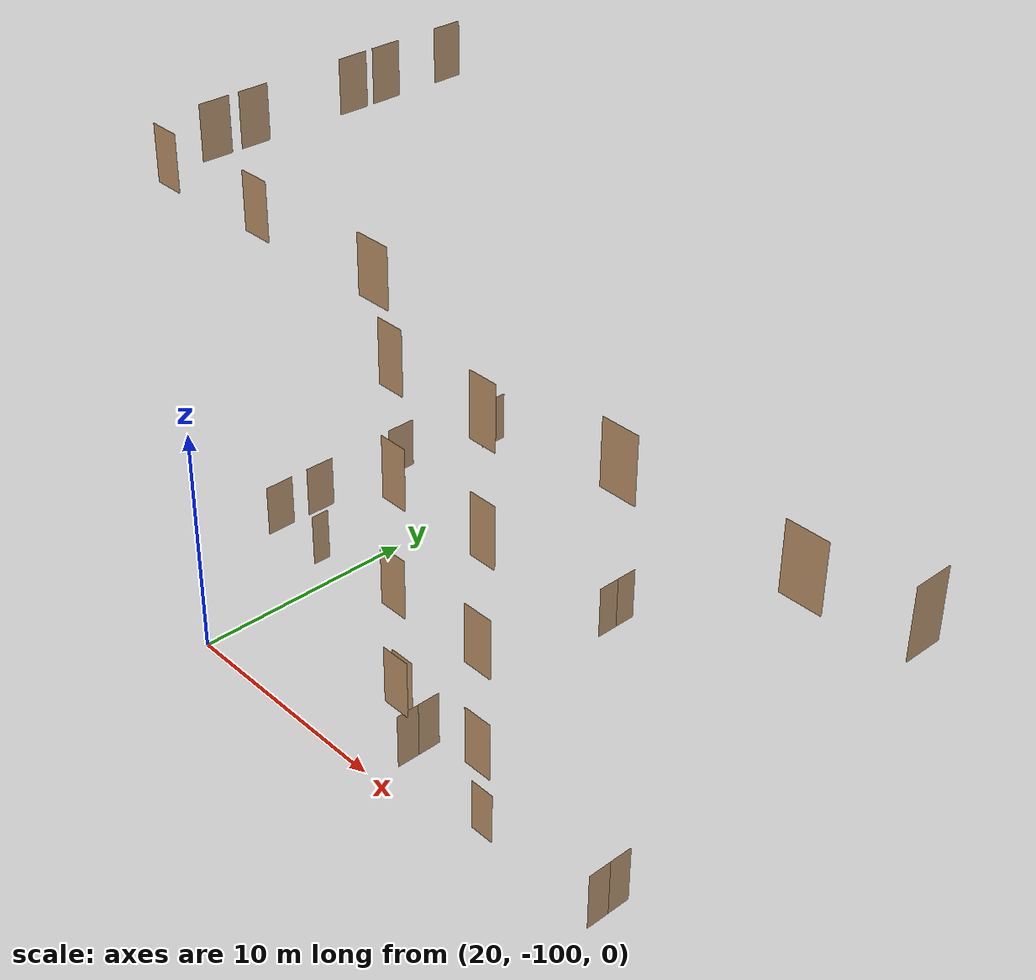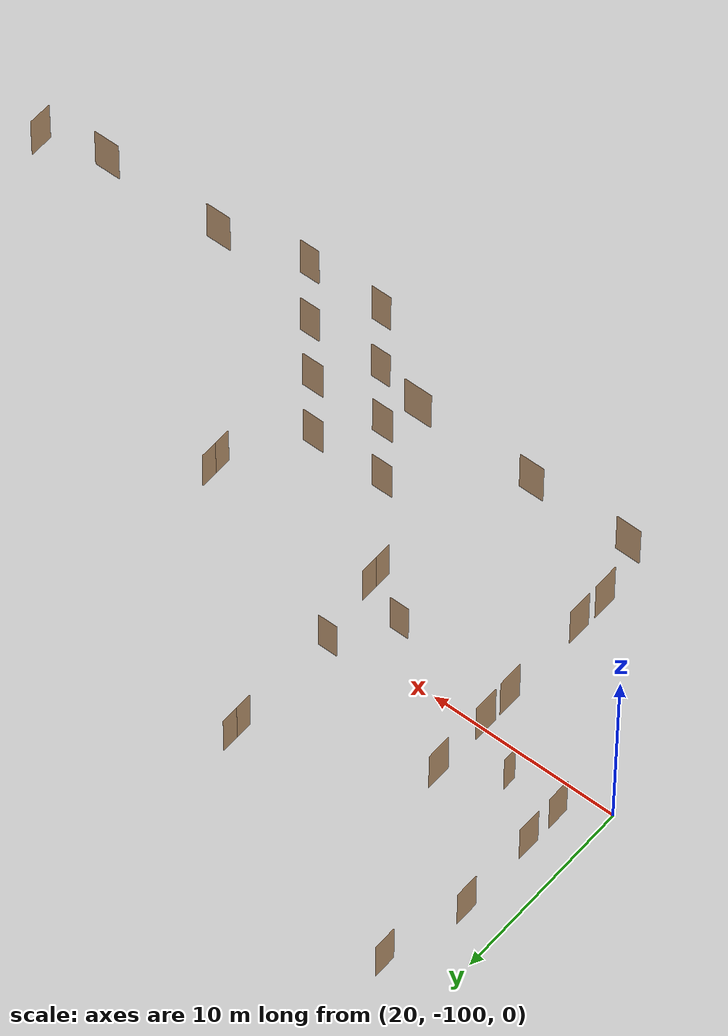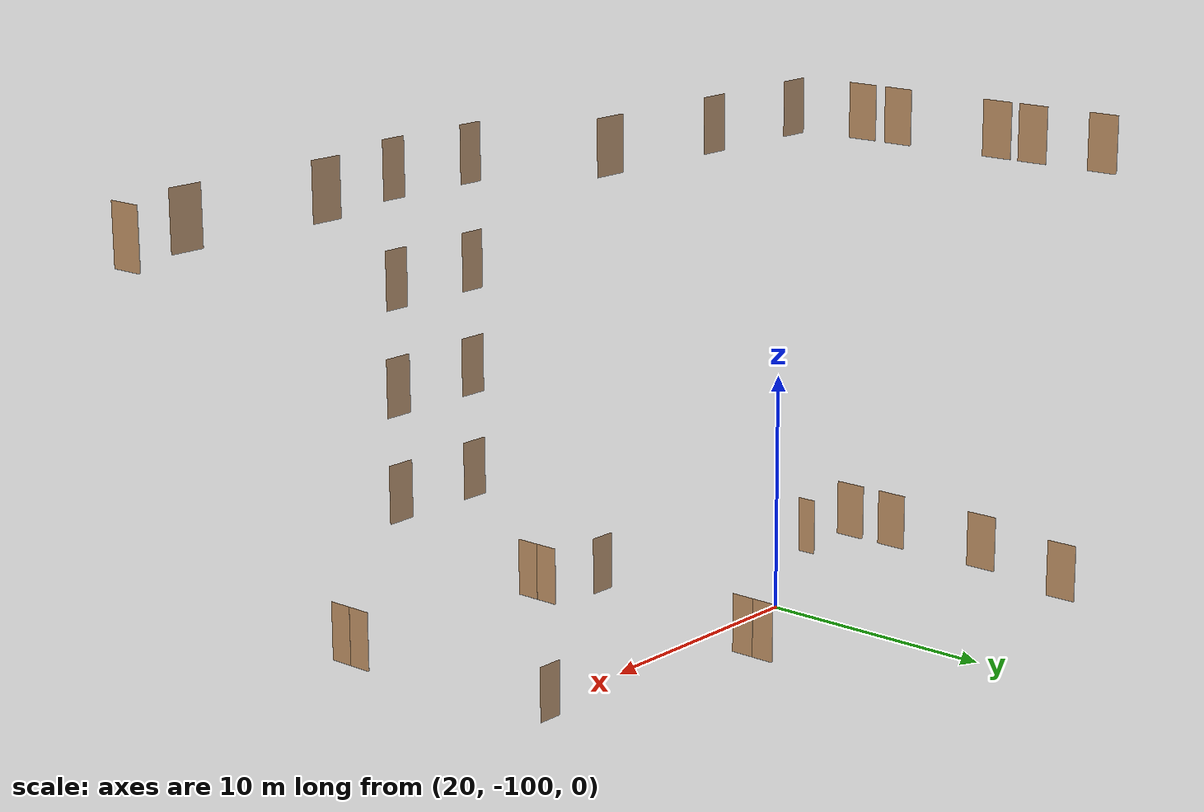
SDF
<sdf version="1.7">
 <world name="sim_world">
  <model name="Snull16">
   <pose>35.237146697532 -98.97069036329009 0.0 0 0 3.141592653589793</pose>
   <link name="right">
    <pose>0 0 1.11 0 0 0</pose>
    <visual name="right_visual">
     <geometry><box><size>1.0574308329910787 0.03 2.2</size></box></geometry>
     <material>
      <ambient>0.5 0.25 0 0.6</ambient>
      <diffuse>0.5 0.25 0 0.6</diffuse>
      <pbr><metal><metalness>0.0</metalness></metal></pbr>
     </material>
    </visual>
    <collision name="right_collision">
     <geometry><box><size>1.0574308329910787 0.03 2.2</size></box></geometry>
     <surface><contact><collide_bitmask>0x02</collide_bitmask></contact></surface>
    </collision>
    <inertial>
     <mass>50.0</mass>
     <inertia><ixx>20.17041666666667</ixx><iyy>24.8256665273342</iyy><izz>4.662749860667526</izz></inertia>
    </inertial>
   </link>
   <joint name="right_joint" type="revolute">
    <parent>world</parent>
    <child>right</child>
    <axis><xyz>0 0 -1</xyz><limit><lower>0</lower><upper>1.57</upper></limit></axis>
    <pose>0.5337154164955393 0 0 0 0 0</pose>
   </joint>
   <plugin name="register_component" filename="libregister_component.so">
    <component name="Door">
     <v_max_door>0.5</v_max_door>
     <a_max_door>0.3</a_max_door>
     <a_nom_door>0.15</a_nom_door>
     <dx_min_door>0.01</dx_min_door>
     <f_max_door>500.0</f_max_door>
     <ros_interface>true</ros_interface>
     <door name="Snull16" type="SwingDoor" left_joint_name="empty_joint" right_joint_name="right_joint"/>
    </component>
   </plugin>
  </model>
  <model name="0null48">
   <pose>43.39054624201916 -101.08589403726236 4.0 0 0 -1.5707963267948966</pose>
   <link name="right">
    <pose>0.450500317365492 0 1.11 0 0 0</pose>
    <visual name="right_visual">
     <geometry><box><size>0.891000634730984 0.03 2.2</size></box></geometry>
     <material>
      <ambient>0.5 0.25 0 0.6</ambient>
      <diffuse>0.5 0.25 0 0.6</diffuse>
      <pbr><metal><metalness>0.0</metalness></metal></pbr>
     </material>
    </visual>
    <collision name="right_collision">
     <geometry><box><size>0.891000634730984 0.03 2.2</size></box></geometry>
     <surface><contact><collide_bitmask>0x02</collide_bitmask></contact></surface>
    </collision>
    <inertial>
     <mass>50.0</mass>
     <inertia><ixx>20.17041666666667</ixx><iyy>23.474508879545905</iyy><izz>3.311592212879235</izz></inertia>
    </inertial>
   </link>
   <joint name="right_joint" type="revolute">
    <parent>world</parent>
    <child>right</child>
    <axis><xyz>0 0 1</xyz><limit><lower>0</lower><upper>1.57</upper></limit></axis>
    <pose>0.450500317365492 0 0 0 0 0</pose>
   </joint>
   <link name="left">
    <pose>-0.450500317365492 0 1.11 0 0 0</pose>
    <visual name="left_visual">
     <geometry><box><size>0.891000634730984 0.03 2.2</size></box></geometry>
     <material>
      <ambient>0.5 0.25 0 0.6</ambient>
      <diffuse>0.5 0.25 0 0.6</diffuse>
      <pbr><metal><metalness>0.0</metalness></metal></pbr>
     </material>
    </visual>
    <collision name="left_collision">
     <geometry><box><size>0.891000634730984 0.03 2.2</size></box></geometry>
     <surface><contact><collide_bitmask>0x02</collide_bitmask></contact></surface>
    </collision>
    <inertial>
     <mass>50.0</mass>
     <inertia><ixx>20.17041666666667</ixx><iyy>23.474508879545905</iyy><izz>3.311592212879235</izz></inertia>
    </inertial>
   </link>
   <joint name="left_joint" type="revolute">
    <parent>world</parent>
    <child>left</child>
    <axis><xyz>0 0 1</xyz><limit><lower>-1.57</lower><upper>0</upper></limit></axis>
    <pose>-0.450500317365492 0 0 0 0 0</pose>
   </joint>
   <plugin name="register_component" filename="libregister_component.so">
    <component name="Door">
     <v_max_door>0.5</v_max_door>
     <a_max_door>0.3</a_max_door>
     <a_nom_door>0.15</a_nom_door>
     <dx_min_door>0.01</dx_min_door>
     <f_max_door>500.0</f_max_door>
     <ros_interface>true</ros_interface>
     <door name="0null48" type="DoubleSwingDoor" left_joint_name="left_joint" right_joint_name="right_joint"/>
    </component>
   </plugin>
  </model>
  <model name="0null60">
   <pose>33.57039913377887 -90.70772504947163 4.0 0 0 1.5707963267948966</pose>
   <link name="right">
    <pose>0.44838143598551383 0 1.11 0 0 0</pose>
    <visual name="right_visual">
     <geometry><box><size>0.8867628719710277 0.03 2.2</size></box></geometry>
     <material>
      <ambient>0.5 0.25 0 0.6</ambient>
      <diffuse>0.5 0.25 0 0.6</diffuse>
      <pbr><metal><metalness>0.0</metalness></metal></pbr>
     </material>
    </visual>
    <collision name="right_collision">
     <geometry><box><size>0.8867628719710277 0.03 2.2</size></box></geometry>
     <surface><contact><collide_bitmask>0x02</collide_bitmask></contact></surface>
    </collision>
    <inertial>
     <mass>50.0</mass>
     <inertia><ixx>20.17041666666667</ixx><iyy>23.443118296276275</iyy><izz>3.2802016296096053</izz></inertia>
    </inertial>
   </link>
   <joint name="right_joint" type="revolute">
    <parent>world</parent>
    <child>right</child>
    <axis><xyz>0 0 1</xyz><limit><lower>0</lower><upper>1.57</upper></limit></axis>
    <pose>0.44838143598551383 0 0 0 0 0</pose>
   </joint>
   <link name="left">
    <pose>-0.44838143598551383 0 1.11 0 0 0</pose>
    <visual name="left_visual">
     <geometry><box><size>0.8867628719710277 0.03 2.2</size></box></geometry>
     <material>
      <ambient>0.5 0.25 0 0.6</ambient>
      <diffuse>0.5 0.25 0 0.6</diffuse>
      <pbr><metal><metalness>0.0</metalness></metal></pbr>
     </material>
    </visual>
    <collision name="left_collision">
     <geometry><box><size>0.8867628719710277 0.03 2.2</size></box></geometry>
     <surface><contact><collide_bitmask>0x02</collide_bitmask></contact></surface>
    </collision>
    <inertial>
     <mass>50.0</mass>
     <inertia><ixx>20.17041666666667</ixx><iyy>23.443118296276275</iyy><izz>3.2802016296096053</izz></inertia>
    </inertial>
   </link>
   <joint name="left_joint" type="revolute">
    <parent>world</parent>
    <child>left</child>
    <axis><xyz>0 0 1</xyz><limit><lower>-1.57</lower><upper>0</upper></limit></axis>
    <pose>-0.44838143598551383 0 0 0 0 0</pose>
   </joint>
   <plugin name="register_component" filename="libregister_component.so">
    <component name="Door">
     <v_max_door>0.5</v_max_door>
     <a_max_door>0.3</a_max_door>
     <a_nom_door>0.15</a_nom_door>
     <dx_min_door>0.01</dx_min_door>
     <f_max_door>500.0</f_max_door>
     <ros_interface>true</ros_interface>
     <door name="0null60" type="DoubleSwingDoor" left_joint_name="left_joint" right_joint_name="right_joint"/>
    </component>
   </plugin>
  </model>
  <model name="0null61">
   <pose>21.194563715789855 -85.5821416570212 4.0 0 0 -1.5707963267948966</pose>
   <link name="right">
    <pose>0 0 1.11 0 0 0</pose>
    <visual name="right_visual">
     <geometry><box><size>1.2200713138931485 0.03 2.2</size></box></geometry>
     <material>
      <ambient>0.5 0.25 0 0.6</ambient>
      <diffuse>0.5 0.25 0 0.6</diffuse>
      <pbr><metal><metalness>0.0</metalness></metal></pbr>
     </material>
    </visual>
    <collision name="right_collision">
     <geometry><box><size>1.2200713138931485 0.03 2.2</size></box></geometry>
     <surface><contact><collide_bitmask>0x02</collide_bitmask></contact></surface>
    </collision>
    <inertial>
     <mass>50.0</mass>
     <inertia><ixx>20.17041666666667</ixx><iyy>26.36905837910398</iyy><izz>6.206141712437307</izz></inertia>
    </inertial>
   </link>
   <joint name="right_joint" type="revolute">
    <parent>world</parent>
    <child>right</child>
    <axis><xyz>0 0 1</xyz><limit><lower>0</lower><upper>1.57</upper></limit></axis>
    <pose>0.6150356569465742 0 0 0 0 0</pose>
   </joint>
   <plugin name="register_component" filename="libregister_component.so">
    <component name="Door">
     <v_max_door>0.5</v_max_door>
     <a_max_door>0.3</a_max_door>
     <a_nom_door>0.15</a_nom_door>
     <dx_min_door>0.01</dx_min_door>
     <f_max_door>500.0</f_max_door>
     <ros_interface>true</ros_interface>
     <door name="0null61" type="SwingDoor" left_joint_name="empty_joint" right_joint_name="right_joint"/>
    </component>
   </plugin>
  </model>
  <model name="0null62">
   <pose>20.1770526079976 -89.85169697195977 4.0 0 0 -1.5674074995689025</pose>
   <link name="right">
    <pose>0 0 1.11 0 0 0</pose>
    <visual name="right_visual">
     <geometry><box><size>1.268056847708154 0.03 2.2</size></box></geometry>
     <material>
      <ambient>0.5 0.25 0 0.6</ambient>
      <diffuse>0.5 0.25 0 0.6</diffuse>
      <pbr><metal><metalness>0.0</metalness></metal></pbr>
     </material>
    </visual>
    <collision name="right_collision">
     <geometry><box><size>1.268056847708154 0.03 2.2</size></box></geometry>
     <surface><contact><collide_bitmask>0x02</collide_bitmask></contact></surface>
    </collision>
    <inertial>
     <mass>50.0</mass>
     <inertia><ixx>20.17041666666667</ixx><iyy>26.866534037581424</iyy><izz>6.703617370914752</izz></inertia>
    </inertial>
   </link>
   <joint name="right_joint" type="revolute">
    <parent>world</parent>
    <child>right</child>
    <axis><xyz>0 0 1</xyz><limit><lower>0</lower><upper>1.57</upper></limit></axis>
    <pose>0.639028423854077 0 0 0 0 0</pose>
   </joint>
   <plugin name="register_component" filename="libregister_component.so">
    <component name="Door">
     <v_max_door>0.5</v_max_door>
     <a_max_door>0.3</a_max_door>
     <a_nom_door>0.15</a_nom_door>
     <dx_min_door>0.01</dx_min_door>
     <f_max_door>500.0</f_max_door>
     <ros_interface>true</ros_interface>
     <door name="0null62" type="SwingDoor" left_joint_name="empty_joint" right_joint_name="right_joint"/>
    </component>
   </plugin>
  </model>
  <model name="0null63">
   <pose>20.18616286450359 -96.13930478288461 4.0 0 0 1.5835833536071844</pose>
   <link name="right">
    <pose>0 0 1.11 0 0 0</pose>
    <visual name="right_visual">
     <geometry><box><size>1.24560053945507 0.03 2.2</size></box></geometry>
     <material>
      <ambient>0.5 0.25 0 0.6</ambient>
      <diffuse>0.5 0.25 0 0.6</diffuse>
      <pbr><metal><metalness>0.0</metalness></metal></pbr>
     </material>
    </visual>
    <collision name="right_collision">
     <geometry><box><size>1.24560053945507 0.03 2.2</size></box></geometry>
     <surface><contact><collide_bitmask>0x02</collide_bitmask></contact></surface>
    </collision>
    <inertial>
     <mass>50.0</mass>
     <inertia><ixx>20.17041666666667</ixx><iyy>26.631336266211513</iyy><izz>6.4684195995448395</izz></inertia>
    </inertial>
   </link>
   <joint name="right_joint" type="revolute">
    <parent>world</parent>
    <child>right</child>
    <axis><xyz>0 0 -1</xyz><limit><lower>0</lower><upper>1.57</upper></limit></axis>
    <pose>0.627800269727535 0 0 0 0 0</pose>
   </joint>
   <plugin name="register_component" filename="libregister_component.so">
    <component name="Door">
     <v_max_door>0.5</v_max_door>
     <a_max_door>0.3</a_max_door>
     <a_nom_door>0.15</a_nom_door>
     <dx_min_door>0.01</dx_min_door>
     <f_max_door>500.0</f_max_door>
     <ros_interface>true</ros_interface>
     <door name="0null63" type="SwingDoor" left_joint_name="empty_joint" right_joint_name="right_joint"/>
    </component>
   </plugin>
  </model>
  <model name="0null64">
   <pose>20.188216405929122 -94.12750625396701 4.0 0 0 -1.5826627654357746</pose>
   <link name="right">
    <pose>0 0 1.11 0 0 0</pose>
    <visual name="right_visual">
     <geometry><box><size>1.2611943041755385 0.03 2.2</size></box></geometry>
     <material>
      <ambient>0.5 0.25 0 0.6</ambient>
      <diffuse>0.5 0.25 0 0.6</diffuse>
      <pbr><metal><metalness>0.0</metalness></metal></pbr>
     </material>
    </visual>
    <collision name="right_collision">
     <geometry><box><size>1.2611943041755385 0.03 2.2</size></box></geometry>
     <surface><contact><collide_bitmask>0x02</collide_bitmask></contact></surface>
    </collision>
    <inertial>
     <mass>50.0</mass>
     <inertia><ixx>20.17041666666667</ixx><iyy>26.794212803686758</iyy><izz>6.631296137020086</izz></inertia>
    </inertial>
   </link>
   <joint name="right_joint" type="revolute">
    <parent>world</parent>
    <child>right</child>
    <axis><xyz>0 0 1</xyz><limit><lower>0</lower><upper>1.57</upper></limit></axis>
    <pose>0.6355971520877692 0 0 0 0 0</pose>
   </joint>
   <plugin name="register_component" filename="libregister_component.so">
    <component name="Door">
     <v_max_door>0.5</v_max_door>
     <a_max_door>0.3</a_max_door>
     <a_nom_door>0.15</a_nom_door>
     <dx_min_door>0.01</dx_min_door>
     <f_max_door>500.0</f_max_door>
     <ros_interface>true</ros_interface>
     <door name="0null64" type="SwingDoor" left_joint_name="empty_joint" right_joint_name="right_joint"/>
    </component>
   </plugin>
  </model>
  <model name="0null65">
   <pose>22.95015494903482 -96.27140350222149 4.0 0 0 1.5813201833732315</pose>
   <link name="right">
    <pose>0 0 1.11 0 0 0</pose>
    <visual name="right_visual">
     <geometry><box><size>0.7492549775247888 0.03 2.2</size></box></geometry>
     <material>
      <ambient>0.5 0.25 0 0.6</ambient>
      <diffuse>0.5 0.25 0 0.6</diffuse>
      <pbr><metal><metalness>0.0</metalness></metal></pbr>
     </material>
    </visual>
    <collision name="right_collision">
     <geometry><box><size>0.7492549775247888 0.03 2.2</size></box></geometry>
     <surface><contact><collide_bitmask>0x02</collide_bitmask></contact></surface>
    </collision>
    <inertial>
     <mass>50.0</mass>
     <inertia><ixx>20.17041666666667</ixx><iyy>22.505762588940303</iyy><izz>2.3428459222736326</izz></inertia>
    </inertial>
   </link>
   <joint name="right_joint" type="revolute">
    <parent>world</parent>
    <child>right</child>
    <axis><xyz>0 0 1</xyz><limit><lower>0</lower><upper>1.57</upper></limit></axis>
    <pose>0.3796274887623944 0 0 0 0 0</pose>
   </joint>
   <plugin name="register_component" filename="libregister_component.so">
    <component name="Door">
     <v_max_door>0.5</v_max_door>
     <a_max_door>0.3</a_max_door>
     <a_nom_door>0.15</a_nom_door>
     <dx_min_door>0.01</dx_min_door>
     <f_max_door>500.0</f_max_door>
     <ros_interface>true</ros_interface>
     <door name="0null65" type="SwingDoor" left_joint_name="empty_joint" right_joint_name="right_joint"/>
    </component>
   </plugin>
  </model>
  <model name="0null75">
   <pose>31.63614979651269 -99.47522682298467 4.0 0 0 3.141592653589793</pose>
   <link name="right">
    <pose>0 0 1.11 0 0 0</pose>
    <visual name="right_visual">
     <geometry><box><size>1.026179666206177 0.03 2.2</size></box></geometry>
     <material>
      <ambient>0.5 0.25 0 0.6</ambient>
      <diffuse>0.5 0.25 0 0.6</diffuse>
      <pbr><metal><metalness>0.0</metalness></metal></pbr>
     </material>
    </visual>
    <collision name="right_collision">
     <geometry><box><size>1.026179666206177 0.03 2.2</size></box></geometry>
     <surface><contact><collide_bitmask>0x02</collide_bitmask></contact></surface>
    </collision>
    <inertial>
     <mass>50.0</mass>
     <inertia><ixx>20.17041666666667</ixx><iyy>24.554352947229262</iyy><izz>4.391436280562588</izz></inertia>
    </inertial>
   </link>
   <joint name="right_joint" type="revolute">
    <parent>world</parent>
    <child>right</child>
    <axis><xyz>0 0 -1</xyz><limit><lower>0</lower><upper>1.57</upper></limit></axis>
    <pose>0.5180898331030885 0 0 0 0 0</pose>
   </joint>
   <plugin name="register_component" filename="libregister_component.so">
    <component name="Door">
     <v_max_door>0.5</v_max_door>
     <a_max_door>0.3</a_max_door>
     <a_nom_door>0.15</a_nom_door>
     <dx_min_door>0.01</dx_min_door>
     <f_max_door>500.0</f_max_door>
     <ros_interface>true</ros_interface>
     <door name="0null75" type="SwingDoor" left_joint_name="empty_joint" right_joint_name="right_joint"/>
    </component>
   </plugin>
  </model>
  <model name="nullnueva4">
   <pose>33.962140163536546 -100.72590822536677 4.0 0 0 1.5707963267948966</pose>
   <link name="right">
    <pose>0.4604786618377297 0 1.11 0 0 0</pose>
    <visual name="right_visual">
     <geometry><box><size>0.9109573236754593 0.03 2.2</size></box></geometry>
     <material>
      <ambient>0.5 0.25 0 0.6</ambient>
      <diffuse>0.5 0.25 0 0.6</diffuse>
      <pbr><metal><metalness>0.0</metalness></metal></pbr>
     </material>
    </visual>
    <collision name="right_collision">
     <geometry><box><size>0.9109573236754593 0.03 2.2</size></box></geometry>
     <surface><contact><collide_bitmask>0x02</collide_bitmask></contact></surface>
    </collision>
    <inertial>
     <mass>50.0</mass>
     <inertia><ixx>20.17041666666667</ixx><iyy>23.624346856491485</iyy><izz>3.4614301898248154</izz></inertia>
    </inertial>
   </link>
   <joint name="right_joint" type="revolute">
    <parent>world</parent>
    <child>right</child>
    <axis><xyz>0 0 -1</xyz><limit><lower>0</lower><upper>1.57</upper></limit></axis>
    <pose>0.4604786618377297 0 0 0 0 0</pose>
   </joint>
   <link name="left">
    <pose>-0.4604786618377297 0 1.11 0 0 0</pose>
    <visual name="left_visual">
     <geometry><box><size>0.9109573236754593 0.03 2.2</size></box></geometry>
     <material>
      <ambient>0.5 0.25 0 0.6</ambient>
      <diffuse>0.5 0.25 0 0.6</diffuse>
      <pbr><metal><metalness>0.0</metalness></metal></pbr>
     </material>
    </visual>
    <collision name="left_collision">
     <geometry><box><size>0.9109573236754593 0.03 2.2</size></box></geometry>
     <surface><contact><collide_bitmask>0x02</collide_bitmask></contact></surface>
    </collision>
    <inertial>
     <mass>50.0</mass>
     <inertia><ixx>20.17041666666667</ixx><iyy>23.624346856491485</iyy><izz>3.4614301898248154</izz></inertia>
    </inertial>
   </link>
   <joint name="left_joint" type="revolute">
    <parent>world</parent>
    <child>left</child>
    <axis><xyz>0 0 -1</xyz><limit><lower>-1.57</lower><upper>0</upper></limit></axis>
    <pose>-0.4604786618377297 0 0 0 0 0</pose>
   </joint>
   <plugin name="register_component" filename="libregister_component.so">
    <component name="Door">
     <v_max_door>0.5</v_max_door>
     <a_max_door>0.3</a_max_door>
     <a_nom_door>0.15</a_nom_door>
     <dx_min_door>0.01</dx_min_door>
     <f_max_door>500.0</f_max_door>
     <ros_interface>true</ros_interface>
     <door name="nullnueva4" type="DoubleSwingDoor" left_joint_name="left_joint" right_joint_name="right_joint"/>
    </component>
   </plugin>
  </model>
  <model name="1null17">
   <pose>35.226505619236065 -102.68442668857105 8.0 0 0 3.141592653589793</pose>
   <link name="right">
    <pose>0 0 1.11 0 0 0</pose>
    <visual name="right_visual">
     <geometry><box><size>1.1178422880185204 0.03 2.2</size></box></geometry>
     <material>
      <ambient>0.5 0.25 0 0.6</ambient>
      <diffuse>0.5 0.25 0 0.6</diffuse>
      <pbr><metal><metalness>0.0</metalness></metal></pbr>
     </material>
    </visual>
    <collision name="right_collision">
     <geometry><box><size>1.1178422880185204 0.03 2.2</size></box></geometry>
     <surface><contact><collide_bitmask>0x02</collide_bitmask></contact></surface>
    </collision>
    <inertial>
     <mass>50.0</mass>
     <inertia><ixx>20.17041666666667</ixx><iyy>25.37321408701034</iyy><izz>5.210297420343669</izz></inertia>
    </inertial>
   </link>
   <joint name="right_joint" type="revolute">
    <parent>world</parent>
    <child>right</child>
    <axis><xyz>0 0 -1</xyz><limit><lower>0</lower><upper>1.57</upper></limit></axis>
    <pose>0.5639211440092602 0 0 0 0 0</pose>
   </joint>
   <plugin name="register_component" filename="libregister_component.so">
    <component name="Door">
     <v_max_door>0.5</v_max_door>
     <a_max_door>0.3</a_max_door>
     <a_nom_door>0.15</a_nom_door>
     <dx_min_door>0.01</dx_min_door>
     <f_max_door>500.0</f_max_door>
     <ros_interface>true</ros_interface>
     <door name="1null17" type="SwingDoor" left_joint_name="empty_joint" right_joint_name="right_joint"/>
    </component>
   </plugin>
  </model>
  <model name="1null18">
   <pose>39.10863234141057 -102.68442668857105 8.0 0 0 0.0</pose>
   <link name="right">
    <pose>0 0 1.11 0 0 0</pose>
    <visual name="right_visual">
     <geometry><box><size>1.1415886943210134 0.03 2.2</size></box></geometry>
     <material>
      <ambient>0.5 0.25 0 0.6</ambient>
      <diffuse>0.5 0.25 0 0.6</diffuse>
      <pbr><metal><metalness>0.0</metalness></metal></pbr>
     </material>
    </visual>
    <collision name="right_collision">
     <geometry><box><size>1.1415886943210134 0.03 2.2</size></box></geometry>
     <surface><contact><collide_bitmask>0x02</collide_bitmask></contact></surface>
    </collision>
    <inertial>
     <mass>50.0</mass>
     <inertia><ixx>20.17041666666667</ixx><iyy>25.596769779173155</iyy><izz>5.433853112506484</izz></inertia>
    </inertial>
   </link>
   <joint name="right_joint" type="revolute">
    <parent>world</parent>
    <child>right</child>
    <axis><xyz>0 0 1</xyz><limit><lower>0</lower><upper>1.57</upper></limit></axis>
    <pose>0.5757943471605067 0 0 0 0 0</pose>
   </joint>
   <plugin name="register_component" filename="libregister_component.so">
    <component name="Door">
     <v_max_door>0.5</v_max_door>
     <a_max_door>0.3</a_max_door>
     <a_nom_door>0.15</a_nom_door>
     <dx_min_door>0.01</dx_min_door>
     <f_max_door>500.0</f_max_door>
     <ros_interface>true</ros_interface>
     <door name="1null18" type="SwingDoor" left_joint_name="empty_joint" right_joint_name="right_joint"/>
    </component>
   </plugin>
  </model>
  <model name="2null17">
   <pose>35.226505619236065 -102.68442668857105 12.0 0 0 3.141592653589793</pose>
   <link name="right">
    <pose>0 0 1.11 0 0 0</pose>
    <visual name="right_visual">
     <geometry><box><size>1.1178422880185204 0.03 2.2</size></box></geometry>
     <material>
      <ambient>0.5 0.25 0 0.6</ambient>
      <diffuse>0.5 0.25 0 0.6</diffuse>
      <pbr><metal><metalness>0.0</metalness></metal></pbr>
     </material>
    </visual>
    <collision name="right_collision">
     <geometry><box><size>1.1178422880185204 0.03 2.2</size></box></geometry>
     <surface><contact><collide_bitmask>0x02</collide_bitmask></contact></surface>
    </collision>
    <inertial>
     <mass>50.0</mass>
     <inertia><ixx>20.17041666666667</ixx><iyy>25.37321408701034</iyy><izz>5.210297420343669</izz></inertia>
    </inertial>
   </link>
   <joint name="right_joint" type="revolute">
    <parent>world</parent>
    <child>right</child>
    <axis><xyz>0 0 -1</xyz><limit><lower>0</lower><upper>1.57</upper></limit></axis>
    <pose>0.5639211440092602 0 0 0 0 0</pose>
   </joint>
   <plugin name="register_component" filename="libregister_component.so">
    <component name="Door">
     <v_max_door>0.5</v_max_door>
     <a_max_door>0.3</a_max_door>
     <a_nom_door>0.15</a_nom_door>
     <dx_min_door>0.01</dx_min_door>
     <f_max_door>500.0</f_max_door>
     <ros_interface>true</ros_interface>
     <door name="2null17" type="SwingDoor" left_joint_name="empty_joint" right_joint_name="right_joint"/>
    </component>
   </plugin>
  </model>
  <model name="2null18">
   <pose>39.10863234141057 -102.68442668857105 12.0 0 0 0.0</pose>
   <link name="right">
    <pose>0 0 1.11 0 0 0</pose>
    <visual name="right_visual">
     <geometry><box><size>1.1415886943210134 0.03 2.2</size></box></geometry>
     <material>
      <ambient>0.5 0.25 0 0.6</ambient>
      <diffuse>0.5 0.25 0 0.6</diffuse>
      <pbr><metal><metalness>0.0</metalness></metal></pbr>
     </material>
    </visual>
    <collision name="right_collision">
     <geometry><box><size>1.1415886943210134 0.03 2.2</size></box></geometry>
     <surface><contact><collide_bitmask>0x02</collide_bitmask></contact></surface>
    </collision>
    <inertial>
     <mass>50.0</mass>
     <inertia><ixx>20.17041666666667</ixx><iyy>25.596769779173155</iyy><izz>5.433853112506484</izz></inertia>
    </inertial>
   </link>
   <joint name="right_joint" type="revolute">
    <parent>world</parent>
    <child>right</child>
    <axis><xyz>0 0 1</xyz><limit><lower>0</lower><upper>1.57</upper></limit></axis>
    <pose>0.5757943471605067 0 0 0 0 0</pose>
   </joint>
   <plugin name="register_component" filename="libregister_component.so">
    <component name="Door">
     <v_max_door>0.5</v_max_door>
     <a_max_door>0.3</a_max_door>
     <a_nom_door>0.15</a_nom_door>
     <dx_min_door>0.01</dx_min_door>
     <f_max_door>500.0</f_max_door>
     <ros_interface>true</ros_interface>
     <door name="2null18" type="SwingDoor" left_joint_name="empty_joint" right_joint_name="right_joint"/>
    </component>
   </plugin>
  </model>
  <model name="wnullm4">
   <pose>39.18150496706264 -102.575204234636 16.0 0 0 -4.194948292855431e-05</pose>
   <link name="right">
    <pose>0 0 1.11 0 0 0</pose>
    <visual name="right_visual">
     <geometry><box><size>1.0350466910598042 0.03 2.2</size></box></geometry>
     <material>
      <ambient>0.5 0.25 0 0.6</ambient>
      <diffuse>0.5 0.25 0 0.6</diffuse>
      <pbr><metal><metalness>0.0</metalness></metal></pbr>
     </material>
    </visual>
    <collision name="right_collision">
     <geometry><box><size>1.0350466910598042 0.03 2.2</size></box></geometry>
     <surface><contact><collide_bitmask>0x02</collide_bitmask></contact></surface>
    </collision>
    <inertial>
     <mass>50.0</mass>
     <inertia><ixx>20.17041666666667</ixx><iyy>24.630506886141045</iyy><izz>4.467590219474374</izz></inertia>
    </inertial>
   </link>
   <joint name="right_joint" type="revolute">
    <parent>world</parent>
    <child>right</child>
    <axis><xyz>0 0 1</xyz><limit><lower>0</lower><upper>1.57</upper></limit></axis>
    <pose>0.5225233455299021 0 0 0 0 0</pose>
   </joint>
   <plugin name="register_component" filename="libregister_component.so">
    <component name="Door">
     <v_max_door>0.5</v_max_door>
     <a_max_door>0.3</a_max_door>
     <a_nom_door>0.15</a_nom_door>
     <dx_min_door>0.01</dx_min_door>
     <f_max_door>500.0</f_max_door>
     <ros_interface>true</ros_interface>
     <door name="wnullm4" type="SwingDoor" left_joint_name="empty_joint" right_joint_name="right_joint"/>
    </component>
   </plugin>
  </model>
  <model name="wnullm5">
   <pose>35.26555893833165 -102.57503996272482 16.0 0 0 3.141550704106862</pose>
   <link name="right">
    <pose>0 0 1.11 0 0 0</pose>
    <visual name="right_visual">
     <geometry><box><size>1.022764925120797 0.03 2.2</size></box></geometry>
     <material>
      <ambient>0.5 0.25 0 0.6</ambient>
      <diffuse>0.5 0.25 0 0.6</diffuse>
      <pbr><metal><metalness>0.0</metalness></metal></pbr>
     </material>
    </visual>
    <collision name="right_collision">
     <geometry><box><size>1.022764925120797 0.03 2.2</size></box></geometry>
     <surface><contact><collide_bitmask>0x02</collide_bitmask></contact></surface>
    </collision>
    <inertial>
     <mass>50.0</mass>
     <inertia><ixx>20.17041666666667</ixx><iyy>24.525200383572297</iyy><izz>4.362283716905623</izz></inertia>
    </inertial>
   </link>
   <joint name="right_joint" type="revolute">
    <parent>world</parent>
    <child>right</child>
    <axis><xyz>0 0 -1</xyz><limit><lower>0</lower><upper>1.57</upper></limit></axis>
    <pose>0.5163824625603985 0 0 0 0 0</pose>
   </joint>
   <plugin name="register_component" filename="libregister_component.so">
    <component name="Door">
     <v_max_door>0.5</v_max_door>
     <a_max_door>0.3</a_max_door>
     <a_nom_door>0.15</a_nom_door>
     <dx_min_door>0.01</dx_min_door>
     <f_max_door>500.0</f_max_door>
     <ros_interface>true</ros_interface>
     <door name="wnullm5" type="SwingDoor" left_joint_name="empty_joint" right_joint_name="right_joint"/>
    </component>
   </plugin>
  </model>
  <model name="nullm1">
   <pose>52.714007142084085 -100.83382295789878 20.0 0 0 1.5722001978574076</pose>
   <link name="right">
    <pose>0 0 1.11 0 0 0</pose>
    <visual name="right_visual">
     <geometry><box><size>1.2202130232536026 0.03 2.2</size></box></geometry>
     <material>
      <ambient>0.5 0.25 0 0.6</ambient>
      <diffuse>0.5 0.25 0 0.6</diffuse>
      <pbr><metal><metalness>0.0</metalness></metal></pbr>
     </material>
    </visual>
    <collision name="right_collision">
     <geometry><box><size>1.2202130232536026 0.03 2.2</size></box></geometry>
     <surface><contact><collide_bitmask>0x02</collide_bitmask></contact></surface>
    </collision>
    <inertial>
     <mass>50.0</mass>
     <inertia><ixx>20.17041666666667</ixx><iyy>26.37049925882374</iyy><izz>6.20758259215707</izz></inertia>
    </inertial>
   </link>
   <joint name="right_joint" type="revolute">
    <parent>world</parent>
    <child>right</child>
    <axis><xyz>0 0 1</xyz><limit><lower>0</lower><upper>1.57</upper></limit></axis>
    <pose>0.6151065116268013 0 0 0 0 0</pose>
   </joint>
   <plugin name="register_component" filename="libregister_component.so">
    <component name="Door">
     <v_max_door>0.5</v_max_door>
     <a_max_door>0.3</a_max_door>
     <a_nom_door>0.15</a_nom_door>
     <dx_min_door>0.01</dx_min_door>
     <f_max_door>500.0</f_max_door>
     <ros_interface>true</ros_interface>
     <door name="nullm1" type="SwingDoor" left_joint_name="empty_joint" right_joint_name="right_joint"/>
    </component>
   </plugin>
  </model>
  <model name="nullm2">
   <pose>49.60617679865402 -101.5813006081006 20.0 0 0 -0.000230308609470474</pose>
   <link name="right">
    <pose>0 0 1.11 0 0 0</pose>
    <visual name="right_visual">
     <geometry><box><size>1.33114825781617 0.03 2.2</size></box></geometry>
     <material>
      <ambient>0.5 0.25 0 0.6</ambient>
      <diffuse>0.5 0.25 0 0.6</diffuse>
      <pbr><metal><metalness>0.0</metalness></metal></pbr>
     </material>
    </visual>
    <collision name="right_collision">
     <geometry><box><size>1.33114825781617 0.03 2.2</size></box></geometry>
     <surface><contact><collide_bitmask>0x02</collide_bitmask></contact></surface>
    </collision>
    <inertial>
     <mass>50.0</mass>
     <inertia><ixx>20.17041666666667</ixx><iyy>27.549815351195942</iyy><izz>7.386898684529269</izz></inertia>
    </inertial>
   </link>
   <joint name="right_joint" type="revolute">
    <parent>world</parent>
    <child>right</child>
    <axis><xyz>0 0 1</xyz><limit><lower>0</lower><upper>1.57</upper></limit></axis>
    <pose>0.670574128908085 0 0 0 0 0</pose>
   </joint>
   <plugin name="register_component" filename="libregister_component.so">
    <component name="Door">
     <v_max_door>0.5</v_max_door>
     <a_max_door>0.3</a_max_door>
     <a_nom_door>0.15</a_nom_door>
     <dx_min_door>0.01</dx_min_door>
     <f_max_door>500.0</f_max_door>
     <ros_interface>true</ros_interface>
     <door name="nullm2" type="SwingDoor" left_joint_name="empty_joint" right_joint_name="right_joint"/>
    </component>
   </plugin>
  </model>
  <model name="nullm3">
   <pose>43.387315148873796 -101.57986835069623 20.0 0 0 -0.00023030860946798807</pose>
   <link name="right">
    <pose>0 0 1.11 0 0 0</pose>
    <visual name="right_visual">
     <geometry><box><size>1.28355688577189 0.03 2.2</size></box></geometry>
     <material>
      <ambient>0.5 0.25 0 0.6</ambient>
      <diffuse>0.5 0.25 0 0.6</diffuse>
      <pbr><metal><metalness>0.0</metalness></metal></pbr>
     </material>
    </visual>
    <collision name="right_collision">
     <geometry><box><size>1.28355688577189 0.03 2.2</size></box></geometry>
     <surface><contact><collide_bitmask>0x02</collide_bitmask></contact></surface>
    </collision>
    <inertial>
     <mass>50.0</mass>
     <inertia><ixx>20.17041666666667</ixx><iyy>27.031326162551807</iyy><izz>6.868409495885135</izz></inertia>
    </inertial>
   </link>
   <joint name="right_joint" type="revolute">
    <parent>world</parent>
    <child>right</child>
    <axis><xyz>0 0 1</xyz><limit><lower>0</lower><upper>1.57</upper></limit></axis>
    <pose>0.646778442885945 0 0 0 0 0</pose>
   </joint>
   <plugin name="register_component" filename="libregister_component.so">
    <component name="Door">
     <v_max_door>0.5</v_max_door>
     <a_max_door>0.3</a_max_door>
     <a_nom_door>0.15</a_nom_door>
     <dx_min_door>0.01</dx_min_door>
     <f_max_door>500.0</f_max_door>
     <ros_interface>true</ros_interface>
     <door name="nullm3" type="SwingDoor" left_joint_name="empty_joint" right_joint_name="right_joint"/>
    </component>
   </plugin>
  </model>
  <model name="nullm4">
   <pose>39.182467663189186 -102.57883051273399 20.0 0 0 -0.00023030860946503845</pose>
   <link name="right">
    <pose>0 0 1.11 0 0 0</pose>
    <visual name="right_visual">
     <geometry><box><size>1.0350363492672503 0.03 2.2</size></box></geometry>
     <material>
      <ambient>0.5 0.25 0 0.6</ambient>
      <diffuse>0.5 0.25 0 0.6</diffuse>
      <pbr><metal><metalness>0.0</metalness></metal></pbr>
     </material>
    </visual>
    <collision name="right_collision">
     <geometry><box><size>1.0350363492672503 0.03 2.2</size></box></geometry>
     <surface><contact><collide_bitmask>0x02</collide_bitmask></contact></surface>
    </collision>
    <inertial>
     <mass>50.0</mass>
     <inertia><ixx>20.17041666666667</ixx><iyy>24.63041768460199</iyy><izz>4.467501017935323</izz></inertia>
    </inertial>
   </link>
   <joint name="right_joint" type="revolute">
    <parent>world</parent>
    <child>right</child>
    <axis><xyz>0 0 1</xyz><limit><lower>0</lower><upper>1.57</upper></limit></axis>
    <pose>0.5225181746336252 0 0 0 0 0</pose>
   </joint>
   <plugin name="register_component" filename="libregister_component.so">
    <component name="Door">
     <v_max_door>0.5</v_max_door>
     <a_max_door>0.3</a_max_door>
     <a_nom_door>0.15</a_nom_door>
     <dx_min_door>0.01</dx_min_door>
     <f_max_door>500.0</f_max_door>
     <ros_interface>true</ros_interface>
     <door name="nullm4" type="SwingDoor" left_joint_name="empty_joint" right_joint_name="right_joint"/>
    </component>
   </plugin>
  </model>
  <model name="nullm5">
   <pose>35.26656048710781 -102.57792864558151 20.0 0 0 3.1413623449803363</pose>
   <link name="right">
    <pose>0 0 1.11 0 0 0</pose>
    <visual name="right_visual">
     <geometry><box><size>1.0227547048687282 0.03 2.2</size></box></geometry>
     <material>
      <ambient>0.5 0.25 0 0.6</ambient>
      <diffuse>0.5 0.25 0 0.6</diffuse>
      <pbr><metal><metalness>0.0</metalness></metal></pbr>
     </material>
    </visual>
    <collision name="right_collision">
     <geometry><box><size>1.0227547048687282 0.03 2.2</size></box></geometry>
     <surface><contact><collide_bitmask>0x02</collide_bitmask></contact></surface>
    </collision>
    <inertial>
     <mass>50.0</mass>
     <inertia><ixx>20.17041666666667</ixx><iyy>24.525113276379667</iyy><izz>4.362196609712997</izz></inertia>
    </inertial>
   </link>
   <joint name="right_joint" type="revolute">
    <parent>world</parent>
    <child>right</child>
    <axis><xyz>0 0 -1</xyz><limit><lower>0</lower><upper>1.57</upper></limit></axis>
    <pose>0.5163773524343641 0 0 0 0 0</pose>
   </joint>
   <plugin name="register_component" filename="libregister_component.so">
    <component name="Door">
     <v_max_door>0.5</v_max_door>
     <a_max_door>0.3</a_max_door>
     <a_nom_door>0.15</a_nom_door>
     <dx_min_door>0.01</dx_min_door>
     <f_max_door>500.0</f_max_door>
     <ros_interface>true</ros_interface>
     <door name="nullm5" type="SwingDoor" left_joint_name="empty_joint" right_joint_name="right_joint"/>
    </component>
   </plugin>
  </model>
  <model name="nullm6">
   <pose>30.898721351153508 -99.62644031217621 20.0 0 0 3.140699164360816</pose>
   <link name="right">
    <pose>0 0 1.11 0 0 0</pose>
    <visual name="right_visual">
     <geometry><box><size>1.4230415908585126 0.03 2.2</size></box></geometry>
     <material>
      <ambient>0.5 0.25 0 0.6</ambient>
      <diffuse>0.5 0.25 0 0.6</diffuse>
      <pbr><metal><metalness>0.0</metalness></metal></pbr>
     </material>
    </visual>
    <collision name="right_collision">
     <geometry><box><size>1.4230415908585126 0.03 2.2</size></box></geometry>
     <surface><contact><collide_bitmask>0x02</collide_bitmask></contact></surface>
    </collision>
    <inertial>
     <mass>50.0</mass>
     <inertia><ixx>20.17041666666667</ixx><iyy>28.604364038804697</iyy><izz>8.441447372138027</izz></inertia>
    </inertial>
   </link>
   <joint name="right_joint" type="revolute">
    <parent>world</parent>
    <child>right</child>
    <axis><xyz>0 0 -1</xyz><limit><lower>0</lower><upper>1.57</upper></limit></axis>
    <pose>0.7165207954292563 0 0 0 0 0</pose>
   </joint>
   <plugin name="register_component" filename="libregister_component.so">
    <component name="Door">
     <v_max_door>0.5</v_max_door>
     <a_max_door>0.3</a_max_door>
     <a_nom_door>0.15</a_nom_door>
     <dx_min_door>0.01</dx_min_door>
     <f_max_door>500.0</f_max_door>
     <ros_interface>true</ros_interface>
     <door name="nullm6" type="SwingDoor" left_joint_name="empty_joint" right_joint_name="right_joint"/>
    </component>
   </plugin>
  </model>
  <model name="nullm7">
   <pose>24.808659827060026 -99.5931273737756 20.0 0 0 3.1413623449803127</pose>
   <link name="right">
    <pose>0 0 1.11 0 0 0</pose>
    <visual name="right_visual">
     <geometry><box><size>1.2507692815294122 0.03 2.2</size></box></geometry>
     <material>
      <ambient>0.5 0.25 0 0.6</ambient>
      <diffuse>0.5 0.25 0 0.6</diffuse>
      <pbr><metal><metalness>0.0</metalness></metal></pbr>
     </material>
    </visual>
    <collision name="right_collision">
     <geometry><box><size>1.2507692815294122 0.03 2.2</size></box></geometry>
     <surface><contact><collide_bitmask>0x02</collide_bitmask></contact></surface>
    </collision>
    <inertial>
     <mass>50.0</mass>
     <inertia><ixx>20.17041666666667</ixx><iyy>26.68509914840668</iyy><izz>6.522182481740009</izz></inertia>
    </inertial>
   </link>
   <joint name="right_joint" type="revolute">
    <parent>world</parent>
    <child>right</child>
    <axis><xyz>0 0 -1</xyz><limit><lower>0</lower><upper>1.57</upper></limit></axis>
    <pose>0.6303846407647061 0 0 0 0 0</pose>
   </joint>
   <plugin name="register_component" filename="libregister_component.so">
    <component name="Door">
     <v_max_door>0.5</v_max_door>
     <a_max_door>0.3</a_max_door>
     <a_nom_door>0.15</a_nom_door>
     <dx_min_door>0.01</dx_min_door>
     <f_max_door>500.0</f_max_door>
     <ros_interface>true</ros_interface>
     <door name="nullm7" type="SwingDoor" left_joint_name="empty_joint" right_joint_name="right_joint"/>
    </component>
   </plugin>
  </model>
  <model name="nullm8">
   <pose>19.729774678026402 -99.61354192233117 20.0 0 0 -0.012072127006565604</pose>
   <link name="right">
    <pose>0 0 1.11 0 0 0</pose>
    <visual name="right_visual">
     <geometry><box><size>1.2525026631142973 0.03 2.2</size></box></geometry>
     <material>
      <ambient>0.5 0.25 0 0.6</ambient>
      <diffuse>0.5 0.25 0 0.6</diffuse>
      <pbr><metal><metalness>0.0</metalness></metal></pbr>
     </material>
    </visual>
    <collision name="right_collision">
     <geometry><box><size>1.2525026631142973 0.03 2.2</size></box></geometry>
     <surface><contact><collide_bitmask>0x02</collide_bitmask></contact></surface>
    </collision>
    <inertial>
     <mass>50.0</mass>
     <inertia><ixx>20.17041666666667</ixx><iyy>26.7031788379517</iyy><izz>6.540262171285029</izz></inertia>
    </inertial>
   </link>
   <joint name="right_joint" type="revolute">
    <parent>world</parent>
    <child>right</child>
    <axis><xyz>0 0 1</xyz><limit><lower>0</lower><upper>1.57</upper></limit></axis>
    <pose>0.6312513315571486 0 0 0 0 0</pose>
   </joint>
   <plugin name="register_component" filename="libregister_component.so">
    <component name="Door">
     <v_max_door>0.5</v_max_door>
     <a_max_door>0.3</a_max_door>
     <a_nom_door>0.15</a_nom_door>
     <dx_min_door>0.01</dx_min_door>
     <f_max_door>500.0</f_max_door>
     <ros_interface>true</ros_interface>
     <door name="nullm8" type="SwingDoor" left_joint_name="empty_joint" right_joint_name="right_joint"/>
    </component>
   </plugin>
  </model>
  <model name="nullm9">
   <pose>18.817447109124252 -96.89415373197727 20.0 0 0 1.5670726326310904</pose>
   <link name="right">
    <pose>0 0 1.11 0 0 0</pose>
    <visual name="right_visual">
     <geometry><box><size>1.2665312038928045 0.03 2.2</size></box></geometry>
     <material>
      <ambient>0.5 0.25 0 0.6</ambient>
      <diffuse>0.5 0.25 0 0.6</diffuse>
      <pbr><metal><metalness>0.0</metalness></metal></pbr>
     </material>
    </visual>
    <collision name="right_collision">
     <geometry><box><size>1.2665312038928045 0.03 2.2</size></box></geometry>
     <surface><contact><collide_bitmask>0x02</collide_bitmask></contact></surface>
    </collision>
    <inertial>
     <mass>50.0</mass>
     <inertia><ixx>20.17041666666667</ixx><iyy>26.850422043475657</iyy><izz>6.6875053768089865</izz></inertia>
    </inertial>
   </link>
   <joint name="right_joint" type="revolute">
    <parent>world</parent>
    <child>right</child>
    <axis><xyz>0 0 -1</xyz><limit><lower>0</lower><upper>1.57</upper></limit></axis>
    <pose>0.6382656019464023 0 0 0 0 0</pose>
   </joint>
   <plugin name="register_component" filename="libregister_component.so">
    <component name="Door">
     <v_max_door>0.5</v_max_door>
     <a_max_door>0.3</a_max_door>
     <a_nom_door>0.15</a_nom_door>
     <dx_min_door>0.01</dx_min_door>
     <f_max_door>500.0</f_max_door>
     <ros_interface>true</ros_interface>
     <door name="nullm9" type="SwingDoor" left_joint_name="empty_joint" right_joint_name="right_joint"/>
    </component>
   </plugin>
  </model>
  <model name="nullm10">
   <pose>18.824453456259977 -95.19928837365347 20.0 0 0 -1.5780348430489641</pose>
   <link name="right">
    <pose>0 0 1.11 0 0 0</pose>
    <visual name="right_visual">
     <geometry><box><size>1.2417715510339964 0.03 2.2</size></box></geometry>
     <material>
      <ambient>0.5 0.25 0 0.6</ambient>
      <diffuse>0.5 0.25 0 0.6</diffuse>
      <pbr><metal><metalness>0.0</metalness></metal></pbr>
     </material>
    </visual>
    <collision name="right_collision">
     <geometry><box><size>1.2417715510339964 0.03 2.2</size></box></geometry>
     <surface><contact><collide_bitmask>0x02</collide_bitmask></contact></surface>
    </collision>
    <inertial>
     <mass>50.0</mass>
     <inertia><ixx>20.17041666666667</ixx><iyy>26.59165243732241</iyy><izz>6.428735770655738</izz></inertia>
    </inertial>
   </link>
   <joint name="right_joint" type="revolute">
    <parent>world</parent>
    <child>right</child>
    <axis><xyz>0 0 1</xyz><limit><lower>0</lower><upper>1.57</upper></limit></axis>
    <pose>0.6258857755169982 0 0 0 0 0</pose>
   </joint>
   <plugin name="register_component" filename="libregister_component.so">
    <component name="Door">
     <v_max_door>0.5</v_max_door>
     <a_max_door>0.3</a_max_door>
     <a_nom_door>0.15</a_nom_door>
     <dx_min_door>0.01</dx_min_door>
     <f_max_door>500.0</f_max_door>
     <ros_interface>true</ros_interface>
     <door name="nullm10" type="SwingDoor" left_joint_name="empty_joint" right_joint_name="right_joint"/>
    </component>
   </plugin>
  </model>
  <model name="nullm11">
   <pose>18.8140694869534 -90.60993507930061 20.0 0 0 1.5697649884611706</pose>
   <link name="right">
    <pose>0 0 1.11 0 0 0</pose>
    <visual name="right_visual">
     <geometry><box><size>1.2676935050055727 0.03 2.2</size></box></geometry>
     <material>
      <ambient>0.5 0.25 0 0.6</ambient>
      <diffuse>0.5 0.25 0 0.6</diffuse>
      <pbr><metal><metalness>0.0</metalness></metal></pbr>
     </material>
    </visual>
    <collision name="right_collision">
     <geometry><box><size>1.2676935050055727 0.03 2.2</size></box></geometry>
     <surface><contact><collide_bitmask>0x02</collide_bitmask></contact></surface>
    </collision>
    <inertial>
     <mass>50.0</mass>
     <inertia><ixx>20.17041666666667</ixx><iyy>26.86269509430548</iyy><izz>6.699778427638808</izz></inertia>
    </inertial>
   </link>
   <joint name="right_joint" type="revolute">
    <parent>world</parent>
    <child>right</child>
    <axis><xyz>0 0 -1</xyz><limit><lower>0</lower><upper>1.57</upper></limit></axis>
    <pose>0.6388467525027863 0 0 0 0 0</pose>
   </joint>
   <plugin name="register_component" filename="libregister_component.so">
    <component name="Door">
     <v_max_door>0.5</v_max_door>
     <a_max_door>0.3</a_max_door>
     <a_nom_door>0.15</a_nom_door>
     <dx_min_door>0.01</dx_min_door>
     <f_max_door>500.0</f_max_door>
     <ros_interface>true</ros_interface>
     <door name="nullm11" type="SwingDoor" left_joint_name="empty_joint" right_joint_name="right_joint"/>
    </component>
   </plugin>
  </model>
  <model name="nullm12">
   <pose>18.808971531154125 -89.0179622603312 20.0 0 0 -1.5787034161406164</pose>
   <link name="right">
    <pose>0 0 1.11 0 0 0</pose>
    <visual name="right_visual">
     <geometry><box><size>1.2517933798112246 0.03 2.2</size></box></geometry>
     <material>
      <ambient>0.5 0.25 0 0.6</ambient>
      <diffuse>0.5 0.25 0 0.6</diffuse>
      <pbr><metal><metalness>0.0</metalness></metal></pbr>
     </material>
    </visual>
    <collision name="right_collision">
     <geometry><box><size>1.2517933798112246 0.03 2.2</size></box></geometry>
     <surface><contact><collide_bitmask>0x02</collide_bitmask></contact></surface>
    </collision>
    <inertial>
     <mass>50.0</mass>
     <inertia><ixx>20.17041666666667</ixx><iyy>26.695777773913374</iyy><izz>6.5328611072467035</izz></inertia>
    </inertial>
   </link>
   <joint name="right_joint" type="revolute">
    <parent>world</parent>
    <child>right</child>
    <axis><xyz>0 0 1</xyz><limit><lower>0</lower><upper>1.57</upper></limit></axis>
    <pose>0.6308966899056123 0 0 0 0 0</pose>
   </joint>
   <plugin name="register_component" filename="libregister_component.so">
    <component name="Door">
     <v_max_door>0.5</v_max_door>
     <a_max_door>0.3</a_max_door>
     <a_nom_door>0.15</a_nom_door>
     <dx_min_door>0.01</dx_min_door>
     <f_max_door>500.0</f_max_door>
     <ros_interface>true</ros_interface>
     <door name="nullm12" type="SwingDoor" left_joint_name="empty_joint" right_joint_name="right_joint"/>
    </component>
   </plugin>
  </model>
  <model name="nullm13">
   <pose>18.811283936346342 -85.96078362192645 20.0 0 0 -1.574809053959177</pose>
   <link name="right">
    <pose>0 0 1.11 0 0 0</pose>
    <visual name="right_visual">
     <geometry><box><size>1.2366323765441722 0.03 2.2</size></box></geometry>
     <material>
      <ambient>0.5 0.25 0 0.6</ambient>
      <diffuse>0.5 0.25 0 0.6</diffuse>
      <pbr><metal><metalness>0.0</metalness></metal></pbr>
     </material>
    </visual>
    <collision name="right_collision">
     <geometry><box><size>1.2366323765441722 0.03 2.2</size></box></geometry>
     <surface><contact><collide_bitmask>0x02</collide_bitmask></contact></surface>
    </collision>
    <inertial>
     <mass>50.0</mass>
     <inertia><ixx>20.17041666666667</ixx><iyy>26.538581811322036</iyy><izz>6.375665144655364</izz></inertia>
    </inertial>
   </link>
   <joint name="right_joint" type="revolute">
    <parent>world</parent>
    <child>right</child>
    <axis><xyz>0 0 1</xyz><limit><lower>0</lower><upper>1.57</upper></limit></axis>
    <pose>0.6233161882720861 0 0 0 0 0</pose>
   </joint>
   <plugin name="register_component" filename="libregister_component.so">
    <component name="Door">
     <v_max_door>0.5</v_max_door>
     <a_max_door>0.3</a_max_door>
     <a_nom_door>0.15</a_nom_door>
     <dx_min_door>0.01</dx_min_door>
     <f_max_door>500.0</f_max_door>
     <ros_interface>true</ros_interface>
     <door name="nullm13" type="SwingDoor" left_joint_name="empty_joint" right_joint_name="right_joint"/>
    </component>
   </plugin>
  </model>
 </world>
</sdf>
